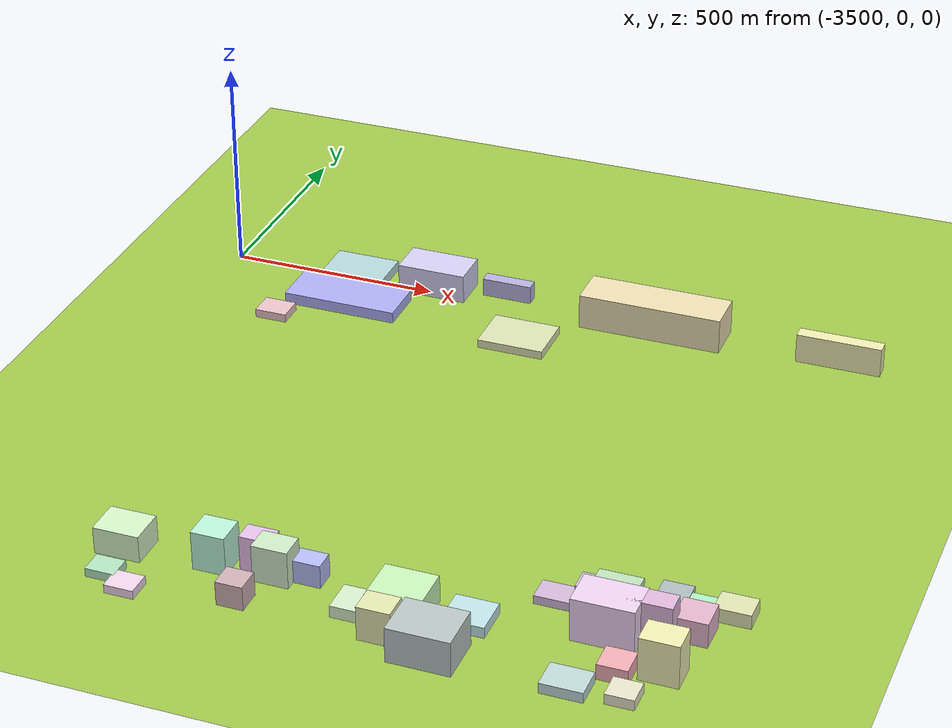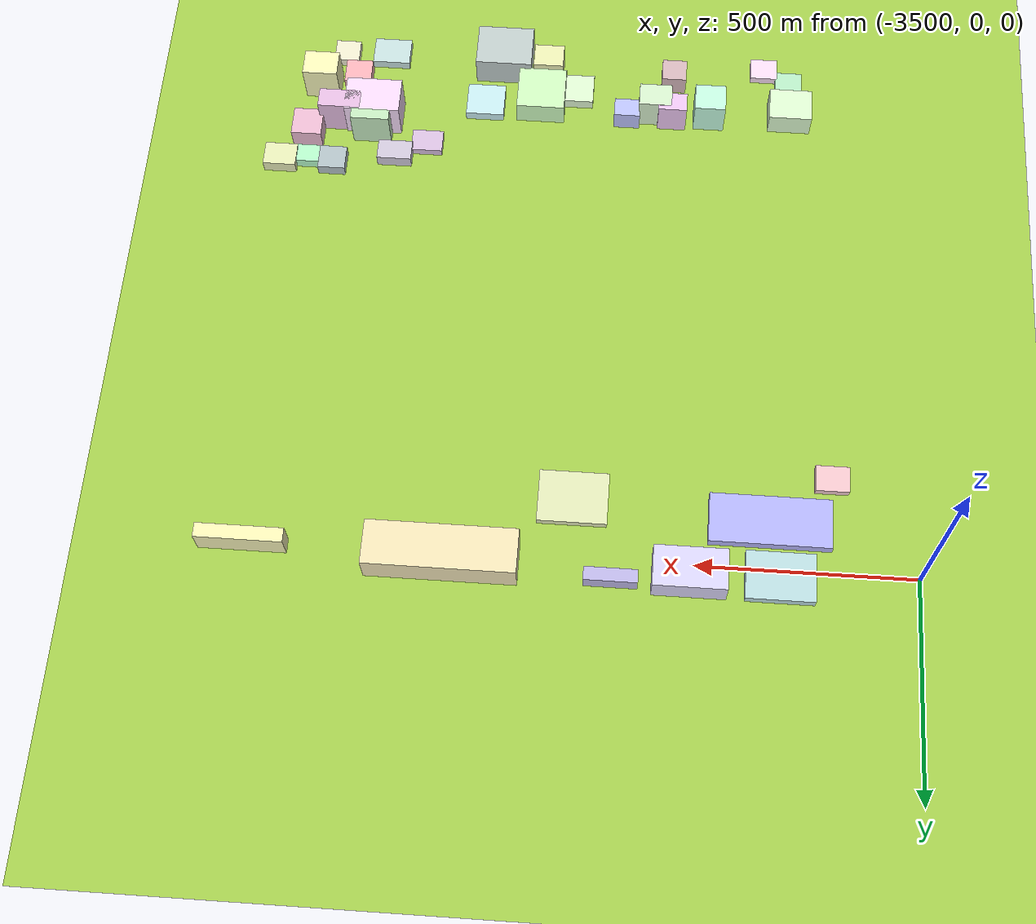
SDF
<sdf version="1.9">
 <world name="city_map">
  <model name="ground_plane">
   <static>1</static>
   <link name="link">
    <collision name="collision">
     <geometry><plane><normal>0 0 1</normal><size>11000 11000</size></plane></geometry>
    </collision>
    <visual name="visual">
     <geometry><plane><normal>0 0 1</normal><size>11000 11000</size></plane></geometry>
     <material>
      <ambient>0.551 0.712 0.210 1</ambient>
      <diffuse>0.651 0.812 0.310 1</diffuse>
      <specular>0.1 0.1 0.05 1</specular>
     </material>
    </visual>
   </link>
  </model>
  <model name="building_153093208">
   <static>1</static>
   <pose>-2443.2017444397106 20.16748925370061 42.198108445544754 0 0 0</pose>
   <link name="link">
    <collision name="collision">
     <geometry><box><size>340.4903575833751 102.03119999982846 84.39621689108951</size></box></geometry>
    </collision>
    <visual name="visual">
     <cast_shadows>false</cast_shadows>
     <geometry><box><size>340.4903575833751 102.03119999982846 84.39621689108951</size></box></geometry>
     <material>
      <ambient>0.854 0.802 0.627 1</ambient>
      <diffuse>0.954 0.902 0.727 1</diffuse>
      <specular>0.286 0.271 0.218 1</specular>
      <emissive>0.01 0.01 0.01 1</emissive>
     </material>
    </visual>
   </link>
  </model>
  <model name="building_936097930">
   <static>1</static>
   <pose>-3167.2719465626096 -110.01832383372351 13.5 0 0 0</pose>
   <link name="link">
    <collision name="collision">
     <geometry><box><size>276.3410278735153 114.80730000006645 27.0</size></box></geometry>
    </collision>
    <visual name="visual">
     <cast_shadows>false</cast_shadows>
     <geometry><box><size>276.3410278735153 114.80730000006645 27.0</size></box></geometry>
     <material>
      <ambient>0.604 0.609 0.884 1</ambient>
      <diffuse>0.704 0.709 0.984 1</diffuse>
      <specular>0.211 0.213 0.295 1</specular>
      <emissive>0.01 0.01 0.01 1</emissive>
     </material>
    </visual>
   </link>
  </model>
  <model name="building_658097632">
   <static>1</static>
   <pose>-2724.447426032059 -138.71543440428914 10.0 0 0 0</pose>
   <link name="link">
    <collision name="collision">
     <geometry><box><size>158.05228968827703 121.75590000003211 20</size></box></geometry>
    </collision>
    <visual name="visual">
     <cast_shadows>false</cast_shadows>
     <geometry><box><size>158.05228968827703 121.75590000003211 20</size></box></geometry>
     <material>
      <ambient>0.787 0.812 0.627 1</ambient>
      <diffuse>0.887 0.912 0.727 1</diffuse>
      <specular>0.266 0.274 0.218 1</specular>
      <emissive>0.01 0.01 0.01 1</emissive>
     </material>
    </visual>
   </link>
  </model>
  <model name="building_260960238">
   <static>1</static>
   <pose>-3191.1818645084663 18.053330303760433 12.0 0 0 0</pose>
   <link name="link">
    <collision name="collision">
     <geometry><box><size>155.26425306637756 111.44399999940902 24.0</size></box></geometry>
    </collision>
    <visual name="visual">
     <cast_shadows>false</cast_shadows>
     <geometry><box><size>155.26425306637756 111.44399999940902 24.0</size></box></geometry>
     <material>
      <ambient>0.632 0.765 0.780 1</ambient>
      <diffuse>0.732 0.865 0.880 1</diffuse>
      <specular>0.220 0.260 0.264 1</specular>
      <emissive>0.01 0.01 0.01 1</emissive>
     </material>
    </visual>
   </link>
  </model>
  <model name="building_517297949">
   <static>1</static>
   <pose>-2990.693648158043 26.302233273342257 35.06130607683245 0 0 0</pose>
   <link name="link">
    <collision name="collision">
     <geometry><box><size>165.57113423820743 93.63960000035121 70.1226121536649</size></box></geometry>
    </collision>
    <visual name="visual">
     <cast_shadows>false</cast_shadows>
     <geometry><box><size>165.57113423820743 93.63960000035121 70.1226121536649</size></box></geometry>
     <material>
      <ambient>0.756 0.739 0.879 1</ambient>
      <diffuse>0.856 0.839 0.979 1</diffuse>
      <specular>0.257 0.252 0.294 1</specular>
      <emissive>0.01 0.01 0.01 1</emissive>
     </material>
    </visual>
   </link>
  </model>
  <model name="building_171940427">
   <static>1</static>
   <pose>-2478.420167630205 -1312.803998291327 40.57658476996823 0 0 0</pose>
   <link name="link">
    <collision name="collision">
     <geometry><box><size>137.7953999997601 108.27182505302214 81.15316953993646</size></box></geometry>
    </collision>
    <visual name="visual">
     <cast_shadows>false</cast_shadows>
     <geometry><box><size>137.7953999997601 108.27182505302214 81.15316953993646</size></box></geometry>
     <material>
      <ambient>0.652 0.701 0.692 1</ambient>
      <diffuse>0.752 0.801 0.792 1</diffuse>
      <specular>0.225 0.240 0.238 1</specular>
      <emissive>0.01 0.01 0.01 1</emissive>
     </material>
    </visual>
   </link>
  </model>
  <model name="building_655068773">
   <static>1</static>
   <pose>-2577.758405863559 -1203.7346351896665 31.903906839723213 0 0 0</pose>
   <link name="link">
    <collision name="collision">
     <geometry><box><size>117.2382000000809 113.10000434571978 63.807813679446426</size></box></geometry>
    </collision>
    <visual name="visual">
     <cast_shadows>false</cast_shadows>
     <geometry><box><size>117.2382000000809 113.10000434571978 63.807813679446426</size></box></geometry>
     <material>
      <ambient>0.714 0.892 0.656 1</ambient>
      <diffuse>0.814 0.992 0.756 1</diffuse>
      <specular>0.244 0.298 0.227 1</specular>
      <emissive>0.01 0.01 0.01 1</emissive>
     </material>
    </visual>
   </link>
  </model>
  <model name="building_616884122">
   <static>1</static>
   <pose>-2168.2594843717784 -1131.8823160966522 50.0 0 0 0</pose>
   <link name="link">
    <collision name="collision">
     <geometry><box><size>134.648606621437 89.132999999741 100</size></box></geometry>
    </collision>
    <visual name="visual">
     <cast_shadows>false</cast_shadows>
     <geometry><box><size>134.648606621437 89.132999999741 100</size></box></geometry>
     <material>
      <ambient>0.865 0.761 0.875 1</ambient>
      <diffuse>0.965 0.861 0.975 1</diffuse>
      <specular>0.290 0.258 0.292 1</specular>
      <emissive>0.01 0.01 0.01 1</emissive>
     </material>
    </visual>
   </link>
  </model>
  <model name="building_66414468">
   <static>1</static>
   <pose>-2646.850154164587 -1233.4478326930407 13.870372866850174 0 0 0</pose>
   <link name="link">
    <collision name="collision">
     <geometry><box><size>117.80430000038677 77.35480283777302 27.740745733700347</size></box></geometry>
    </collision>
    <visual name="visual">
     <cast_shadows>false</cast_shadows>
     <geometry><box><size>117.80430000038677 77.35480283777302 27.740745733700347</size></box></geometry>
     <material>
      <ambient>0.773 0.867 0.725 1</ambient>
      <diffuse>0.873 0.967 0.825 1</diffuse>
      <specular>0.262 0.290 0.247 1</specular>
      <emissive>0.01 0.01 0.01 1</emissive>
     </material>
    </visual>
   </link>
  </model>
  <model name="building_826964444">
   <static>1</static>
   <pose>-3195.1709514341655 -1197.294930884028 31.223072083148722 0 0 0</pose>
   <link name="link">
    <collision name="collision">
     <geometry><box><size>103.68510000022724 83.38724880263842 62.446144166297444</size></box></geometry>
    </collision>
    <visual name="visual">
     <cast_shadows>false</cast_shadows>
     <geometry><box><size>103.68510000022724 83.38724880263842 62.446144166297444</size></box></geometry>
     <material>
      <ambient>0.768 0.888 0.719 1</ambient>
      <diffuse>0.868 0.988 0.819 1</diffuse>
      <specular>0.260 0.296 0.246 1</specular>
      <emissive>0.01 0.01 0.01 1</emissive>
     </material>
    </visual>
   </link>
  </model>
  <model name="building_668576874">
   <static>1</static>
   <pose>-2439.33308674714 -1186.6466646672552 12.594794013427686 0 0 0</pose>
   <link name="link">
    <collision name="collision">
     <geometry><box><size>92.95140000019586 86.37993578471176 25.189588026855372</size></box></geometry>
    </collision>
    <visual name="visual">
     <cast_shadows>false</cast_shadows>
     <geometry><box><size>92.95140000019586 86.37993578471176 25.189588026855372</size></box></geometry>
     <material>
      <ambient>0.683 0.823 0.842 1</ambient>
      <diffuse>0.783 0.923 0.942 1</diffuse>
      <specular>0.235 0.277 0.283 1</specular>
      <emissive>0.01 0.01 0.01 1</emissive>
     </material>
    </visual>
   </link>
  </model>
  <model name="building_483404760">
   <static>1</static>
   <pose>-1998.6432106685213 13.88639308851602 35.25 0 0 0</pose>
   <link name="link">
    <collision name="collision">
     <geometry><box><size>198.4100414526951 32.95590000023907 70.5</size></box></geometry>
    </collision>
    <visual name="visual">
     <cast_shadows>false</cast_shadows>
     <geometry><box><size>198.4100414526951 32.95590000023907 70.5</size></box></geometry>
     <material>
      <ambient>0.870 0.857 0.624 1</ambient>
      <diffuse>0.970 0.957 0.724 1</diffuse>
      <specular>0.291 0.287 0.217 1</specular>
      <emissive>0.01 0.01 0.01 1</emissive>
     </material>
    </visual>
   </link>
  </model>
  <model name="building_819514011">
   <static>1</static>
   <pose>-2190.3562082976596 -1318.4211688623911 12.0 0 0 0</pose>
   <link name="link">
    <collision name="collision">
     <geometry><box><size>91.55280000041444 69.76230271116496 24.0</size></box></geometry>
    </collision>
    <visual name="visual">
     <cast_shadows>false</cast_shadows>
     <geometry><box><size>91.55280000041444 69.76230271116496 24.0</size></box></geometry>
     <material>
      <ambient>0.679 0.780 0.773 1</ambient>
      <diffuse>0.779 0.880 0.873 1</diffuse>
      <specular>0.234 0.264 0.262 1</specular>
      <emissive>0.01 0.01 0.01 1</emissive>
     </material>
    </visual>
   </link>
  </model>
  <model name="building_582048767">
   <static>1</static>
   <pose>-2029.4366915879111 -1216.5692370783192 50.0 0 0 0</pose>
   <link name="link">
    <collision name="collision">
     <geometry><box><size>84.9416049094526 64.45770000004813 100</size></box></geometry>
    </collision>
    <visual name="visual">
     <cast_shadows>false</cast_shadows>
     <geometry><box><size>84.9416049094526 64.45770000004813 100</size></box></geometry>
     <material>
      <ambient>0.872 0.867 0.631 1</ambient>
      <diffuse>0.972 0.967 0.731 1</diffuse>
      <specular>0.291 0.290 0.219 1</specular>
      <emissive>0.01 0.01 0.01 1</emissive>
     </material>
    </visual>
   </link>
  </model>
  <model name="building_573798994">
   <static>1</static>
   <pose>-2009.185115151028 -1071.3607009409143 28.5 0 0 0</pose>
   <link name="link">
    <collision name="collision">
     <geometry><box><size>72.99360000042299 71.59639864276443 57.0</size></box></geometry>
    </collision>
    <visual name="visual">
     <cast_shadows>false</cast_shadows>
     <geometry><box><size>72.99360000042299 71.59639864276443 57.0</size></box></geometry>
     <material>
      <ambient>0.824 0.637 0.723 1</ambient>
      <diffuse>0.924 0.737 0.823 1</diffuse>
      <specular>0.277 0.221 0.247 1</specular>
      <emissive>0.01 0.01 0.01 1</emissive>
     </material>
    </visual>
   </link>
  </model>
  <model name="building_217053272">
   <static>1</static>
   <pose>-2995.5165714499644 -1185.1345901653995 45.33189654131503 0 0 0</pose>
   <link name="link">
    <collision name="collision">
     <geometry><box><size>74.83619999987212 69.04442324662531 90.66379308263006</size></box></geometry>
    </collision>
    <visual name="visual">
     <cast_shadows>false</cast_shadows>
     <geometry><box><size>74.83619999987212 69.04442324662531 90.66379308263006</size></box></geometry>
     <material>
      <ambient>0.670 0.889 0.779 1</ambient>
      <diffuse>0.770 0.989 0.879 1</diffuse>
      <specular>0.231 0.297 0.264 1</specular>
      <emissive>0.01 0.01 0.01 1</emissive>
     </material>
    </visual>
   </link>
  </model>
  <model name="building_631949297">
   <static>1</static>
   <pose>-2087.751449466639 -1114.8989994477877 50.0 0 0 0</pose>
   <link name="link">
    <collision name="collision">
     <geometry><box><size>102.13956093910663 48.68459999948982 100</size></box></geometry>
    </collision>
    <visual name="visual">
     <cast_shadows>false</cast_shadows>
     <geometry><box><size>102.13956093910663 48.68459999948982 100</size></box></geometry>
     <material>
      <ambient>0.801 0.644 0.786 1</ambient>
      <diffuse>0.901 0.744 0.886 1</diffuse>
      <specular>0.270 0.223 0.266 1</specular>
      <emissive>0.01 0.01 0.01 1</emissive>
     </material>
    </visual>
   </link>
  </model>
  <model name="building_896371444">
   <static>1</static>
   <pose>-1949.4811760592108 -988.5618160946185 16.5 0 0 0</pose>
   <link name="link">
    <collision name="collision">
     <geometry><box><size>79.1762999993253 59.52304381466567 33.0</size></box></geometry>
    </collision>
    <visual name="visual">
     <cast_shadows>false</cast_shadows>
     <geometry><box><size>79.1762999993253 59.52304381466567 33.0</size></box></geometry>
     <material>
      <ambient>0.805 0.825 0.623 1</ambient>
      <diffuse>0.905 0.925 0.723 1</diffuse>
      <specular>0.272 0.278 0.217 1</specular>
      <emissive>0.01 0.01 0.01 1</emissive>
     </material>
    </visual>
   </link>
  </model>
  <model name="building_663850390">
   <static>1</static>
   <pose>-2860.955232076183 -1186.1414476858522 43.47234897871101 0 0 0</pose>
   <link name="link">
    <collision name="collision">
     <geometry><box><size>79.60919999965199 58.99186925823605 86.94469795742202</size></box></geometry>
    </collision>
    <visual name="visual">
     <cast_shadows>false</cast_shadows>
     <geometry><box><size>79.60919999965199 58.99186925823605 86.94469795742202</size></box></geometry>
     <material>
      <ambient>0.744 0.845 0.706 1</ambient>
      <diffuse>0.844 0.945 0.806 1</diffuse>
      <specular>0.253 0.284 0.242 1</specular>
      <emissive>0.01 0.01 0.01 1</emissive>
     </material>
    </visual>
   </link>
  </model>
  <model name="building_209528758">
   <static>1</static>
   <pose>-3305.0614465973317 -221.65967327151134 10.0 0 0 0</pose>
   <link name="link">
    <collision name="collision">
     <geometry><box><size>76.32360000069127 60.99967617479043 20</size></box></geometry>
    </collision>
    <visual name="visual">
     <cast_shadows>false</cast_shadows>
     <geometry><box><size>76.32360000069127 60.99967617479043 20</size></box></geometry>
     <material>
      <ambient>0.852 0.685 0.706 1</ambient>
      <diffuse>0.952 0.785 0.806 1</diffuse>
      <specular>0.286 0.235 0.242 1</specular>
      <emissive>0.01 0.01 0.01 1</emissive>
     </material>
    </visual>
   </link>
  </model>
  <model name="building_809085089">
   <static>1</static>
   <pose>-2590.2925505487824 -1290.9534539075385 39.770250633963286 0 0 0</pose>
   <link name="link">
    <collision name="collision">
     <geometry><box><size>73.11570000027245 60.37125333716465 79.54050126792657</size></box></geometry>
    </collision>
    <visual name="visual">
     <cast_shadows>false</cast_shadows>
     <geometry><box><size>73.11570000027245 60.37125333716465 79.54050126792657</size></box></geometry>
     <material>
      <ambient>0.823 0.836 0.611 1</ambient>
      <diffuse>0.923 0.936 0.711 1</diffuse>
      <specular>0.277 0.281 0.213 1</specular>
      <emissive>0.01 0.01 0.01 1</emissive>
     </material>
    </visual>
   </link>
  </model>
  <model name="building_811864046">
   <static>1</static>
   <pose>-2304.160310455114 -1059.2606624051264 10.0 0 0 0</pose>
   <link name="link">
    <collision name="collision">
     <geometry><box><size>75.9795000006136 57.15271549910372 20</size></box></geometry>
    </collision>
    <visual name="visual">
     <cast_shadows>false</cast_shadows>
     <geometry><box><size>75.9795000006136 57.15271549910372 20</size></box></geometry>
     <material>
      <ambient>0.750 0.652 0.780 1</ambient>
      <diffuse>0.850 0.752 0.880 1</diffuse>
      <specular>0.255 0.226 0.264 1</specular>
      <emissive>0.01 0.01 0.01 1</emissive>
     </material>
    </visual>
   </link>
  </model>
  <model name="building_20556525">
   <static>1</static>
   <pose>-2228.148696591002 -1019.2823797791312 16.5 0 0 0</pose>
   <link name="link">
    <collision name="collision">
     <geometry><box><size>83.49923368796206 51.304199999343325 33.0</size></box></geometry>
    </collision>
    <visual name="visual">
     <cast_shadows>false</cast_shadows>
     <geometry><box><size>83.49923368796206 51.304199999343325 33.0</size></box></geometry>
     <material>
      <ambient>0.714 0.685 0.756 1</ambient>
      <diffuse>0.814 0.785 0.856 1</diffuse>
      <specular>0.244 0.236 0.257 1</specular>
      <emissive>0.01 0.01 0.01 1</emissive>
     </material>
    </visual>
   </link>
  </model>
  <model name="building_106579416">
   <static>1</static>
   <pose>-2114.1926394109028 -1243.2512684168744 18.0 0 0 0</pose>
   <link name="link">
    <collision name="collision">
     <geometry><box><size>65.30929002502447 63.33660000035479 36.0</size></box></geometry>
    </collision>
    <visual name="visual">
     <cast_shadows>false</cast_shadows>
     <geometry><box><size>65.30929002502447 63.33660000035479 36.0</size></box></geometry>
     <material>
      <ambient>0.872 0.607 0.630 1</ambient>
      <diffuse>0.972 0.707 0.730 1</diffuse>
      <specular>0.291 0.212 0.219 1</specular>
      <emissive>0.01 0.01 0.01 1</emissive>
     </material>
    </visual>
   </link>
  </model>
  <model name="building_370071525">
   <static>1</static>
   <pose>-2077.268522978647 -989.3524120228983 15.0 0 0 0</pose>
   <link name="link">
    <collision name="collision">
     <geometry><box><size>65.86739999995928 61.03634324566707 30.0</size></box></geometry>
    </collision>
    <visual name="visual">
     <cast_shadows>false</cast_shadows>
     <geometry><box><size>65.86739999995928 61.03634324566707 30.0</size></box></geometry>
     <material>
      <ambient>0.602 0.659 0.677 1</ambient>
      <diffuse>0.702 0.759 0.777 1</diffuse>
      <specular>0.211 0.228 0.233 1</specular>
      <emissive>0.01 0.01 0.01 1</emissive>
     </material>
    </visual>
   </link>
  </model>
  <model name="building_898640985">
   <static>1</static>
   <pose>-3130.8875749640024 -1328.015834908452 10.0 0 0 0</pose>
   <link name="link">
    <collision name="collision">
     <geometry><box><size>65.6675999999905 56.17619090197925 20</size></box></geometry>
    </collision>
    <visual name="visual">
     <cast_shadows>false</cast_shadows>
     <geometry><box><size>65.6675999999905 56.17619090197925 20</size></box></geometry>
     <material>
      <ambient>0.876 0.770 0.851 1</ambient>
      <diffuse>0.976 0.870 0.951 1</diffuse>
      <specular>0.293 0.261 0.285 1</specular>
      <emissive>0.01 0.01 0.01 1</emissive>
     </material>
    </visual>
   </link>
  </model>
  <model name="building_939204795">
   <static>1</static>
   <pose>-2817.8433963694824 46.633130508947026 21.865052456004292 0 0 0</pose>
   <link name="link">
    <collision name="collision">
     <geometry><box><size>120.2433241199139 30.54719999969535 43.730104912008585</size></box></geometry>
    </collision>
    <visual name="visual">
     <cast_shadows>false</cast_shadows>
     <geometry><box><size>120.2433241199139 30.54719999969535 43.730104912008585</size></box></geometry>
     <material>
      <ambient>0.646 0.619 0.805 1</ambient>
      <diffuse>0.746 0.719 0.905 1</diffuse>
      <specular>0.224 0.216 0.271 1</specular>
      <emissive>0.01 0.01 0.01 1</emissive>
     </material>
    </visual>
   </link>
  </model>
  <model name="building_231636123">
   <static>1</static>
   <pose>-2077.2629409971646 -1312.0042287814324 12.0 0 0 0</pose>
   <link name="link">
    <collision name="collision">
     <geometry><box><size>61.614875923653514 57.65340000019137 24.0</size></box></geometry>
    </collision>
    <visual name="visual">
     <cast_shadows>false</cast_shadows>
     <geometry><box><size>61.614875923653514 57.65340000019137 24.0</size></box></geometry>
     <material>
      <ambient>0.840 0.826 0.720 1</ambient>
      <diffuse>0.940 0.926 0.820 1</diffuse>
      <specular>0.282 0.278 0.246 1</specular>
      <emissive>0.01 0.01 0.01 1</emissive>
     </material>
    </visual>
   </link>
  </model>
  <model name="building_997785405">
   <static>1</static>
   <pose>-3192.5743715376793 -1292.316703707224 10.0 0 0 0</pose>
   <link name="link">
    <collision name="collision">
     <geometry><box><size>65.90444257862198 53.823899999606795 20</size></box></geometry>
    </collision>
    <visual name="visual">
     <cast_shadows>false</cast_shadows>
     <geometry><box><size>65.90444257862198 53.823899999606795 20</size></box></geometry>
     <material>
      <ambient>0.621 0.820 0.676 1</ambient>
      <diffuse>0.721 0.920 0.776 1</diffuse>
      <specular>0.216 0.276 0.233 1</specular>
      <emissive>0.01 0.01 0.01 1</emissive>
     </material>
    </visual>
   </link>
  </model>
  <model name="building_41599336">
   <static>1</static>
   <pose>-2905.0030902980657 -1285.1081837127745 27.890673417731477 0 0 0</pose>
   <link name="link">
    <collision name="collision">
     <geometry><box><size>59.829000000377164 56.72961663898255 55.781346835462955</size></box></geometry>
    </collision>
    <visual name="visual">
     <cast_shadows>false</cast_shadows>
     <geometry><box><size>59.829000000377164 56.72961663898255 55.781346835462955</size></box></geometry>
     <material>
      <ambient>0.740 0.618 0.640 1</ambient>
      <diffuse>0.840 0.718 0.740 1</diffuse>
      <specular>0.252 0.215 0.222 1</specular>
      <emissive>0.01 0.01 0.01 1</emissive>
     </material>
    </visual>
   </link>
  </model>
  <model name="building_328348888">
   <static>1</static>
   <pose>-2903.97038344645 -1169.4013022950696 42.96846546265261 0 0 0</pose>
   <link name="link">
    <collision name="collision">
     <geometry><box><size>69.10859999997854 47.86496239490031 85.93693092530522</size></box></geometry>
    </collision>
    <visual name="visual">
     <cast_shadows>false</cast_shadows>
     <geometry><box><size>69.10859999997854 47.86496239490031 85.93693092530522</size></box></geometry>
     <material>
      <ambient>0.831 0.682 0.848 1</ambient>
      <diffuse>0.931 0.782 0.948 1</diffuse>
      <specular>0.279 0.235 0.285 1</specular>
      <emissive>0.01 0.01 0.01 1</emissive>
     </material>
    </visual>
   </link>
  </model>
  <model name="building_101813766">
   <static>1</static>
   <pose>-2166.6035340828275 -1076.5834111527531 50.0 0 0 0</pose>
   <link name="link">
    <collision name="collision">
     <geometry><box><size>93.45787452395234 32.53410000004209 100</size></box></geometry>
    </collision>
    <visual name="visual">
     <cast_shadows>false</cast_shadows>
     <geometry><box><size>93.45787452395234 32.53410000004209 100</size></box></geometry>
     <material>
      <ambient>0.674 0.819 0.654 1</ambient>
      <diffuse>0.774 0.919 0.754 1</diffuse>
      <specular>0.232 0.276 0.226 1</specular>
      <emissive>0.01 0.01 0.01 1</emissive>
     </material>
    </visual>
   </link>
  </model>
  <model name="building_785477184">
   <static>1</static>
   <pose>-2015.4520636060447 -998.7758643570205 13.5 0 0 0</pose>
   <link name="link">
    <collision name="collision">
     <geometry><box><size>64.88710060673569 46.631100000730896 27.0</size></box></geometry>
    </collision>
    <visual name="visual">
     <cast_shadows>false</cast_shadows>
     <geometry><box><size>64.88710060673569 46.631100000730896 27.0</size></box></geometry>
     <material>
      <ambient>0.609 0.884 0.689 1</ambient>
      <diffuse>0.709 0.984 0.789 1</diffuse>
      <specular>0.213 0.295 0.237 1</specular>
      <emissive>0.01 0.01 0.01 1</emissive>
     </material>
    </visual>
   </link>
  </model>
  <model name="building_82644474">
   <static>1</static>
   <pose>-2792.570142106921 -1167.22272010632 26.861486794056354 0 0 0</pose>
   <link name="link">
    <collision name="collision">
     <geometry><box><size>63.136799999597315 47.47300144618162 53.72297358811271</size></box></geometry>
    </collision>
    <visual name="visual">
     <cast_shadows>false</cast_shadows>
     <geometry><box><size>63.136799999597315 47.47300144618162 53.72297358811271</size></box></geometry>
     <material>
      <ambient>0.635 0.663 0.894 1</ambient>
      <diffuse>0.735 0.763 0.994 1</diffuse>
      <specular>0.220 0.229 0.298 1</specular>
      <emissive>0.01 0.01 0.01 1</emissive>
     </material>
    </visual>
   </link>
  </model>
 </world>
</sdf>
